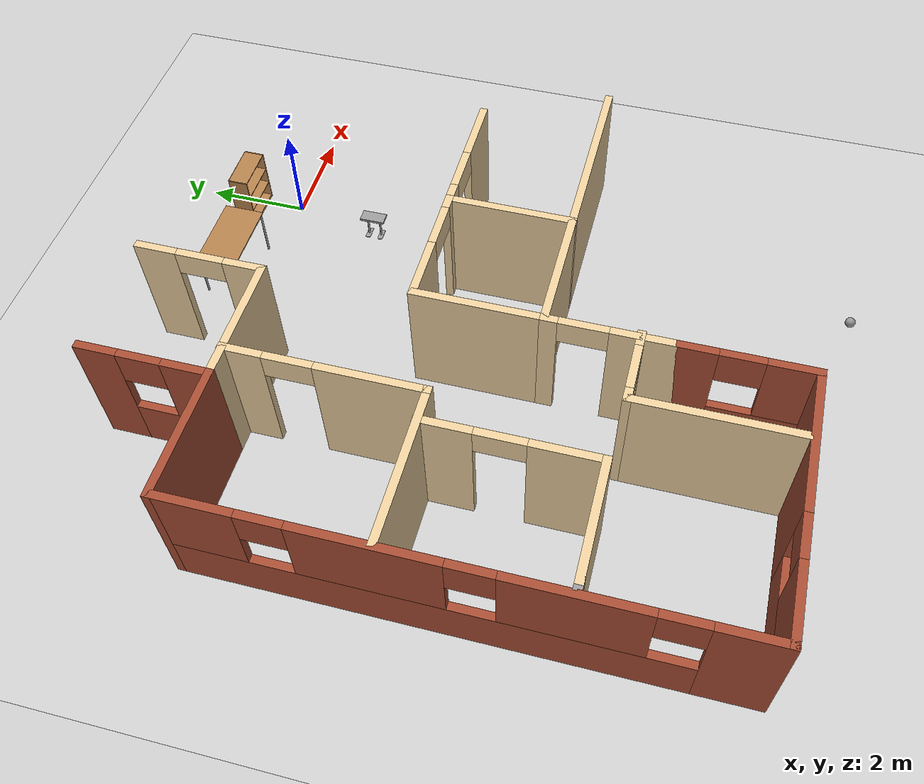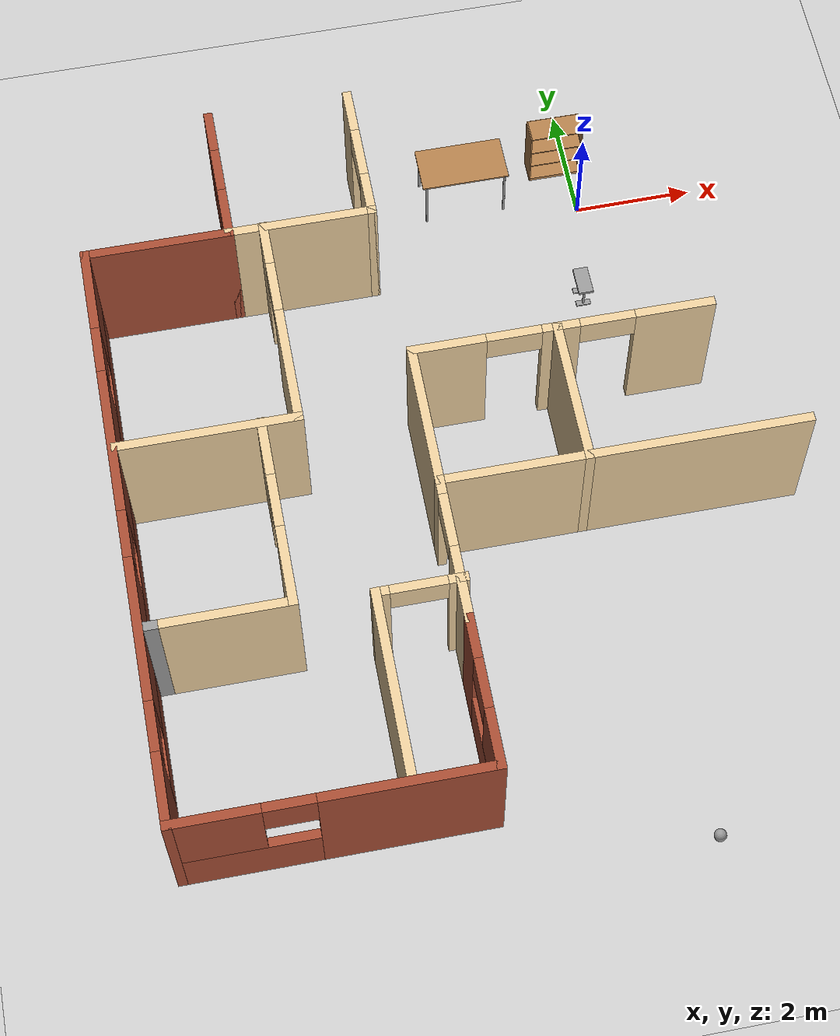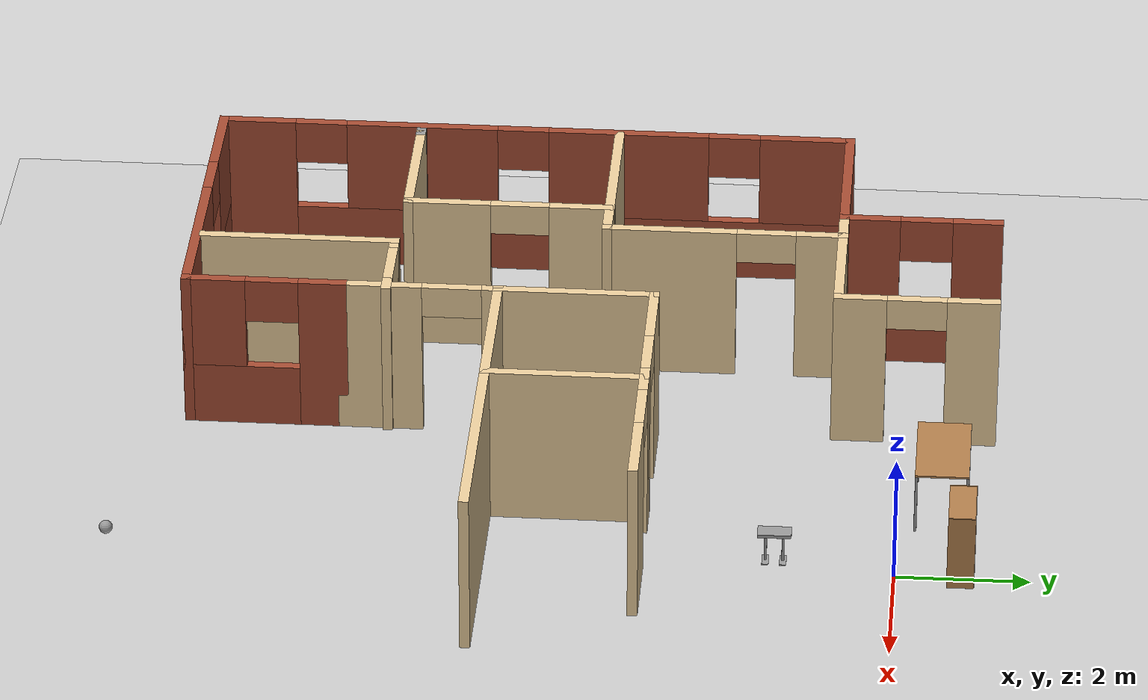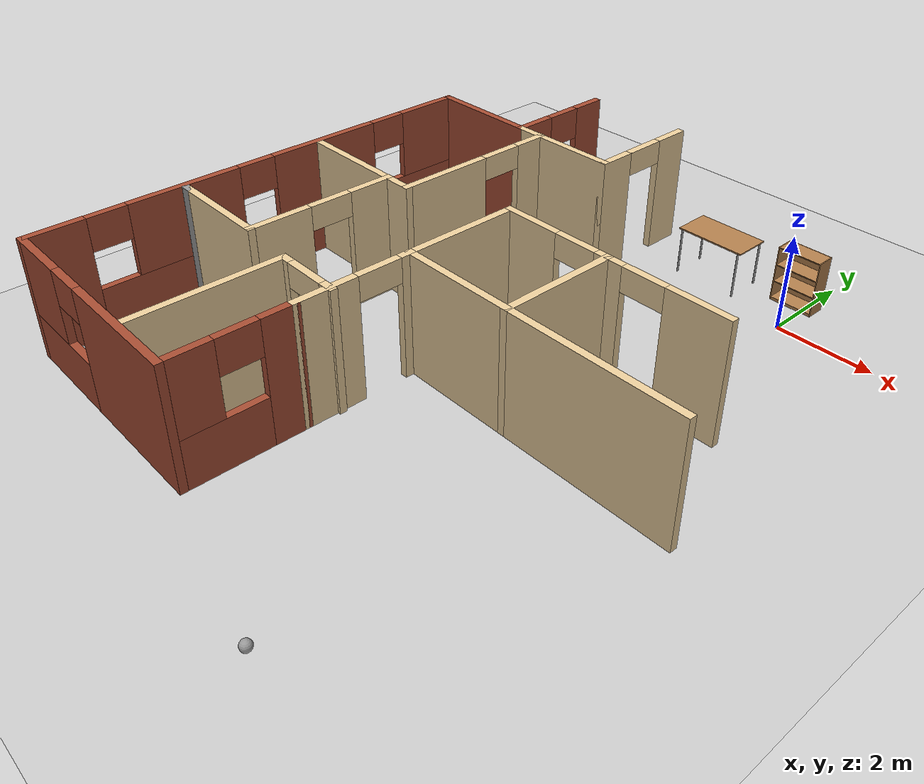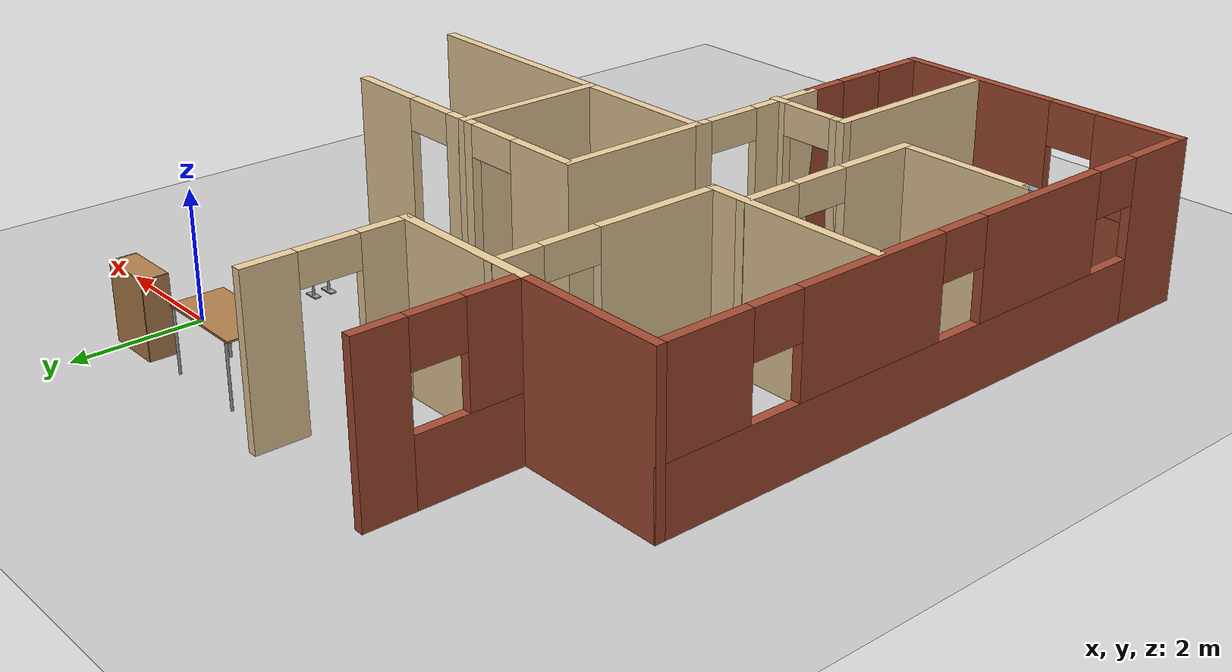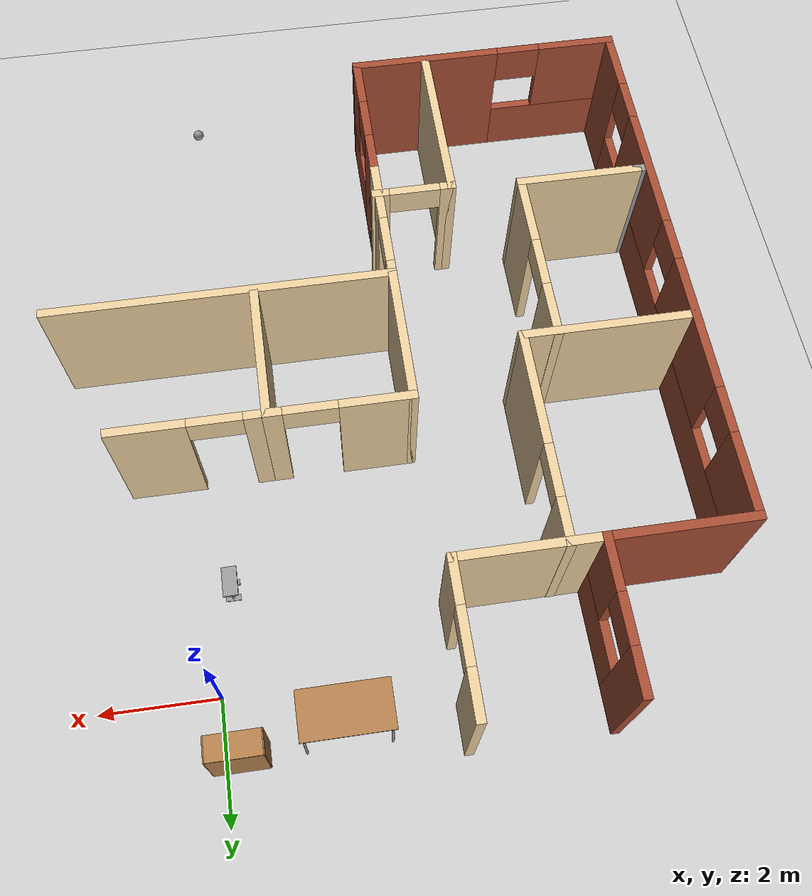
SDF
<sdf version="1.6">
 <world name="default">
  <model name="ground_plane">
   <static>1</static>
   <link name="link">
    <collision name="collision">
     <geometry><plane><normal>0 0 1</normal><size>100 100</size></plane></geometry>
     <surface>
      <contact><collide_bitmask>65535</collide_bitmask></contact>
      <friction><ode><mu>100</mu><mu2>50</mu2></ode></friction>
     </surface>
    </collision>
    <visual name="visual">
     <cast_shadows>0</cast_shadows>
     <geometry><plane><normal>0 0 1</normal><size>100 100</size></plane></geometry>
     <material>
      <script><uri>file://media/materials/scripts/gazebo.material</uri><name>Gazebo/Grey</name></script>
     </material>
    </visual>
   </link>
  </model>
  <model name="Building">
   <pose>1.29293 -4.72878 0 0 -0 0</pose>
   <link name="Wall_20">
    <pose>-7.42468 4.89874 0 0 0 -1.5708</pose>
    <visual name="Wall_20_Visual_0">
     <pose>-0.866423 0 1.25 0 -0 0</pose>
     <geometry><box><size>0.767154 0.15 2.5</size></box></geometry>
     <material>
      <script><uri>file://media/materials/scripts/gazebo.material</uri><name>Gazebo/Bricks</name></script>
      <ambient>1 1 1 1</ambient>
     </material>
     <meta><layer>0</layer></meta>
    </visual>
    <collision name="Wall_20_Collision_0">
     <geometry><box><size>0.767154 0.15 2.5</size></box></geometry>
     <pose>-0.866423 0 1.25 0 -0 0</pose>
    </collision>
    <visual name="Wall_20_Visual_1">
     <pose>0.383577 0 0.5 0 -0 0</pose>
     <geometry><box><size>1.73285 0.15 1</size></box></geometry>
     <material>
      <script><uri>file://media/materials/scripts/gazebo.material</uri><name>Gazebo/Bricks</name></script>
      <ambient>1 1 1 1</ambient>
     </material>
     <meta><layer>0</layer></meta>
    </visual>
    <collision name="Wall_20_Collision_1">
     <geometry><box><size>1.73285 0.15 1</size></box></geometry>
     <pose>0.383577 0 0.5 0 -0 0</pose>
    </collision>
    <visual name="Wall_20_Visual_2">
     <pose>0.783577 0 1.75 0 -0 0</pose>
     <geometry><box><size>0.932846 0.15 1.5</size></box></geometry>
     <material>
      <script><uri>file://media/materials/scripts/gazebo.material</uri><name>Gazebo/Bricks</name></script>
      <ambient>1 1 1 1</ambient>
     </material>
     <meta><layer>0</layer></meta>
    </visual>
    <collision name="Wall_20_Collision_2">
     <geometry><box><size>0.932846 0.15 1.5</size></box></geometry>
     <pose>0.783577 0 1.75 0 -0 0</pose>
    </collision>
    <visual name="Wall_20_Visual_3">
     <pose>-0.082846 0 2.15 0 -0 0</pose>
     <geometry><box><size>0.8 0.15 0.7</size></box></geometry>
     <material>
      <script><uri>file://media/materials/scripts/gazebo.material</uri><name>Gazebo/Bricks</name></script>
      <ambient>1 1 1 1</ambient>
     </material>
     <meta><layer>0</layer></meta>
    </visual>
    <collision name="Wall_20_Collision_3">
     <geometry><box><size>0.8 0.15 0.7</size></box></geometry>
     <pose>-0.082846 0 2.15 0 -0 0</pose>
    </collision>
   </link>
   <link name="Wall_22">
    <collision name="Wall_22_Collision">
     <geometry><box><size>2.5 0.15 2.5</size></box></geometry>
     <pose>0 0 1.25 0 -0 0</pose>
    </collision>
    <visual name="Wall_22_Visual">
     <pose>0 0 1.25 0 -0 0</pose>
     <geometry><box><size>2.5 0.15 2.5</size></box></geometry>
     <material>
      <script><uri>file://media/materials/scripts/gazebo.material</uri><name>Gazebo/Bricks</name></script>
      <ambient>1 1 1 1</ambient>
     </material>
     <meta><layer>0</layer></meta>
    </visual>
    <pose>-8.59968 3.72374 0 0 -0 3.14159</pose>
   </link>
   <link name="Wall_24">
    <pose>-4.925 -4.89874 0 0 0 -1.5708</pose>
    <visual name="Wall_24_Visual_0">
     <pose>-0.884029 0 1.25 0 -0 0</pose>
     <geometry><box><size>0.731941 0.15 2.5</size></box></geometry>
     <material>
      <script><uri>file://media/materials/scripts/gazebo.material</uri><name>Gazebo/Bricks</name></script>
      <ambient>1 1 1 1</ambient>
     </material>
     <meta><layer>0</layer></meta>
    </visual>
    <collision name="Wall_24_Collision_0">
     <geometry><box><size>0.731941 0.15 2.5</size></box></geometry>
     <pose>-0.884029 0 1.25 0 -0 0</pose>
    </collision>
    <visual name="Wall_24_Visual_1">
     <pose>0.365971 0 0.5 0 -0 0</pose>
     <geometry><box><size>1.76806 0.15 1</size></box></geometry>
     <material>
      <script><uri>file://media/materials/scripts/gazebo.material</uri><name>Gazebo/Bricks</name></script>
      <ambient>1 1 1 1</ambient>
     </material>
     <meta><layer>0</layer></meta>
    </visual>
    <collision name="Wall_24_Collision_1">
     <geometry><box><size>1.76806 0.15 1</size></box></geometry>
     <pose>0.365971 0 0.5 0 -0 0</pose>
    </collision>
    <visual name="Wall_24_Visual_2">
     <pose>0.765971 0 1.75 0 -0 0</pose>
     <geometry><box><size>0.968059 0.15 1.5</size></box></geometry>
     <material>
      <script><uri>file://media/materials/scripts/gazebo.material</uri><name>Gazebo/Bricks</name></script>
      <ambient>1 1 1 1</ambient>
     </material>
     <meta><layer>0</layer></meta>
    </visual>
    <collision name="Wall_24_Collision_2">
     <geometry><box><size>0.968059 0.15 1.5</size></box></geometry>
     <pose>0.765971 0 1.75 0 -0 0</pose>
    </collision>
    <visual name="Wall_24_Visual_3">
     <pose>-0.118059 0 2.15 0 -0 0</pose>
     <geometry><box><size>0.8 0.15 0.7</size></box></geometry>
     <material>
      <script><uri>file://media/materials/scripts/gazebo.material</uri><name>Gazebo/Bricks</name></script>
      <ambient>1 1 1 1</ambient>
     </material>
     <meta><layer>0</layer></meta>
    </visual>
    <collision name="Wall_24_Collision_3">
     <geometry><box><size>0.8 0.15 0.7</size></box></geometry>
     <pose>-0.118059 0 2.15 0 -0 0</pose>
    </collision>
   </link>
   <link name="Wall_26">
    <pose>-7.35 -6.07374 0 0 -0 3.14159</pose>
    <visual name="Wall_26_Visual_0">
     <pose>-1.12032 0 1.25 0 -0 0</pose>
     <geometry><box><size>2.75936 0.15 2.5</size></box></geometry>
     <material>
      <script><uri>file://media/materials/scripts/gazebo.material</uri><name>Gazebo/Bricks</name></script>
      <ambient>1 1 1 1</ambient>
     </material>
     <meta><layer>0</layer></meta>
    </visual>
    <collision name="Wall_26_Collision_0">
     <geometry><box><size>2.75936 0.15 2.5</size></box></geometry>
     <pose>-1.12032 0 1.25 0 -0 0</pose>
    </collision>
    <visual name="Wall_26_Visual_1">
     <pose>1.37968 0 0.5 0 -0 0</pose>
     <geometry><box><size>2.24064 0.15 1</size></box></geometry>
     <material>
      <script><uri>file://media/materials/scripts/gazebo.material</uri><name>Gazebo/Bricks</name></script>
      <ambient>1 1 1 1</ambient>
     </material>
     <meta><layer>0</layer></meta>
    </visual>
    <collision name="Wall_26_Collision_1">
     <geometry><box><size>2.24064 0.15 1</size></box></geometry>
     <pose>1.37968 0 0.5 0 -0 0</pose>
    </collision>
    <visual name="Wall_26_Visual_2">
     <pose>1.77968 0 1.75 0 -0 0</pose>
     <geometry><box><size>1.44064 0.15 1.5</size></box></geometry>
     <material>
      <script><uri>file://media/materials/scripts/gazebo.material</uri><name>Gazebo/Bricks</name></script>
      <ambient>1 1 1 1</ambient>
     </material>
     <meta><layer>0</layer></meta>
    </visual>
    <collision name="Wall_26_Collision_2">
     <geometry><box><size>1.44064 0.15 1.5</size></box></geometry>
     <pose>1.77968 0 1.75 0 -0 0</pose>
    </collision>
    <visual name="Wall_26_Visual_3">
     <pose>0.659358 0 2.15 0 -0 0</pose>
     <geometry><box><size>0.8 0.15 0.7</size></box></geometry>
     <material>
      <script><uri>file://media/materials/scripts/gazebo.material</uri><name>Gazebo/Bricks</name></script>
      <ambient>1 1 1 1</ambient>
     </material>
     <meta><layer>0</layer></meta>
    </visual>
    <collision name="Wall_26_Collision_3">
     <geometry><box><size>0.8 0.15 0.7</size></box></geometry>
     <pose>0.659358 0 2.15 0 -0 0</pose>
    </collision>
   </link>
   <link name="Wall_28">
    <pose>-9.77484 -1.175 0 0 -0 1.57076</pose>
    <visual name="Wall_28_Visual_0">
     <pose>-4.37001 0 1.25 0 -0 0</pose>
     <geometry><box><size>1.20746 0.15 2.5</size></box></geometry>
     <material>
      <script><uri>file://media/materials/scripts/gazebo.material</uri><name>Gazebo/Bricks</name></script>
      <ambient>1 1 1 1</ambient>
     </material>
     <meta><layer>0</layer></meta>
    </visual>
    <collision name="Wall_28_Collision_0">
     <geometry><box><size>1.20746 0.15 2.5</size></box></geometry>
     <pose>-4.37001 0 1.25 0 -0 0</pose>
    </collision>
    <visual name="Wall_28_Visual_1">
     <pose>0.603732 0 0.5 0 -0 0</pose>
     <geometry><box><size>8.74002 0.15 1</size></box></geometry>
     <material>
      <script><uri>file://media/materials/scripts/gazebo.material</uri><name>Gazebo/Bricks</name></script>
      <ambient>1 1 1 1</ambient>
     </material>
     <meta><layer>0</layer></meta>
    </visual>
    <collision name="Wall_28_Collision_1">
     <geometry><box><size>8.74002 0.15 1</size></box></geometry>
     <pose>0.603732 0 0.5 0 -0 0</pose>
    </collision>
    <visual name="Wall_28_Visual_2">
     <pose>-1.78357 0 1.75 0 -0 0</pose>
     <geometry><box><size>2.36542 0.15 1.5</size></box></geometry>
     <material>
      <script><uri>file://media/materials/scripts/gazebo.material</uri><name>Gazebo/Bricks</name></script>
      <ambient>1 1 1 1</ambient>
     </material>
     <meta><layer>0</layer></meta>
    </visual>
    <collision name="Wall_28_Collision_2">
     <geometry><box><size>2.36542 0.15 1.5</size></box></geometry>
     <pose>-1.78357 0 1.75 0 -0 0</pose>
    </collision>
    <visual name="Wall_28_Visual_3">
     <pose>1.44835 0 1.75 0 -0 0</pose>
     <geometry><box><size>2.49842 0.15 1.5</size></box></geometry>
     <material>
      <script><uri>file://media/materials/scripts/gazebo.material</uri><name>Gazebo/Bricks</name></script>
      <ambient>1 1 1 1</ambient>
     </material>
     <meta><layer>0</layer></meta>
    </visual>
    <collision name="Wall_28_Collision_3">
     <geometry><box><size>2.49842 0.15 1.5</size></box></geometry>
     <pose>1.44835 0 1.75 0 -0 0</pose>
    </collision>
    <visual name="Wall_28_Visual_4">
     <pose>4.23565 0 1.75 0 -0 0</pose>
     <geometry><box><size>1.47618 0.15 1.5</size></box></geometry>
     <material>
      <script><uri>file://media/materials/scripts/gazebo.material</uri><name>Gazebo/Bricks</name></script>
      <ambient>1 1 1 1</ambient>
     </material>
     <meta><layer>0</layer></meta>
    </visual>
    <collision name="Wall_28_Collision_4">
     <geometry><box><size>1.47618 0.15 1.5</size></box></geometry>
     <pose>4.23565 0 1.75 0 -0 0</pose>
    </collision>
    <visual name="Wall_28_Visual_5">
     <pose>-3.36628 0 2.15 0 -0 0</pose>
     <geometry><box><size>0.8 0.15 0.7</size></box></geometry>
     <material>
      <script><uri>file://media/materials/scripts/gazebo.material</uri><name>Gazebo/Bricks</name></script>
      <ambient>1 1 1 1</ambient>
     </material>
     <meta><layer>0</layer></meta>
    </visual>
    <collision name="Wall_28_Collision_5">
     <geometry><box><size>0.8 0.15 0.7</size></box></geometry>
     <pose>-3.36628 0 2.15 0 -0 0</pose>
    </collision>
    <visual name="Wall_28_Visual_6">
     <pose>-0.200857 0 2.15 0 -0 0</pose>
     <geometry><box><size>0.8 0.15 0.7</size></box></geometry>
     <material>
      <script><uri>file://media/materials/scripts/gazebo.material</uri><name>Gazebo/Bricks</name></script>
      <ambient>1 1 1 1</ambient>
     </material>
     <meta><layer>0</layer></meta>
    </visual>
    <collision name="Wall_28_Collision_6">
     <geometry><box><size>0.8 0.15 0.7</size></box></geometry>
     <pose>-0.200857 0 2.15 0 -0 0</pose>
    </collision>
    <visual name="Wall_28_Visual_7">
     <pose>3.09756 0 2.15 0 -0 0</pose>
     <geometry><box><size>0.8 0.15 0.7</size></box></geometry>
     <material>
      <script><uri>file://media/materials/scripts/gazebo.material</uri><name>Gazebo/Bricks</name></script>
      <ambient>1 1 1 1</ambient>
     </material>
     <meta><layer>0</layer></meta>
    </visual>
    <collision name="Wall_28_Collision_7">
     <geometry><box><size>0.8 0.15 0.7</size></box></geometry>
     <pose>3.09756 0 2.15 0 -0 0</pose>
    </collision>
   </link>
   <link name="Wall_30">
    <pose>-4.925 -2.54874 0 0 -0 1.5708</pose>
    <visual name="Wall_30_Visual_0">
     <pose>-0.60936 0 1.25 0 -0 0</pose>
     <geometry><box><size>1.28128 0.15 2.5</size></box></geometry>
     <material>
      <script><uri>file://media/materials/scripts/gazebo.material</uri><name>Gazebo/Grey</name></script>
      <ambient>0.921569 0.807843 0.615686 1</ambient>
     </material>
     <meta><layer>0</layer></meta>
    </visual>
    <collision name="Wall_30_Collision_0">
     <geometry><box><size>1.28128 0.15 2.5</size></box></geometry>
     <pose>-0.60936 0 1.25 0 -0 0</pose>
    </collision>
    <visual name="Wall_30_Visual_1">
     <pose>1.09064 0 1.25 0 -0 0</pose>
     <geometry><box><size>0.318721 0.15 2.5</size></box></geometry>
     <material>
      <script><uri>file://media/materials/scripts/gazebo.material</uri><name>Gazebo/Grey</name></script>
      <ambient>0.921569 0.807843 0.615686 1</ambient>
     </material>
     <meta><layer>0</layer></meta>
    </visual>
    <collision name="Wall_30_Collision_1">
     <geometry><box><size>0.318721 0.15 2.5</size></box></geometry>
     <pose>1.09064 0 1.25 0 -0 0</pose>
    </collision>
    <visual name="Wall_30_Visual_2">
     <pose>0.481279 0 2.25 0 -0 0</pose>
     <geometry><box><size>0.9 0.15 0.5</size></box></geometry>
     <material>
      <script><uri>file://media/materials/scripts/gazebo.material</uri><name>Gazebo/Grey</name></script>
      <ambient>0.921569 0.807843 0.615686 1</ambient>
     </material>
     <meta><layer>0</layer></meta>
    </visual>
    <collision name="Wall_30_Collision_2">
     <geometry><box><size>0.9 0.15 0.5</size></box></geometry>
     <pose>0.481279 0 2.25 0 -0 0</pose>
    </collision>
   </link>
   <link name="Wall_32">
    <collision name="Wall_32_Collision">
     <geometry><box><size>6 0.15 2.5</size></box></geometry>
     <pose>0 0 1.25 0 -0 0</pose>
    </collision>
    <visual name="Wall_32_Visual">
     <pose>0 0 1.25 0 -0 0</pose>
     <geometry><box><size>6 0.15 2.5</size></box></geometry>
     <material>
      <script><uri>file://media/materials/scripts/gazebo.material</uri><name>Gazebo/Grey</name></script>
      <ambient>0.921569 0.807843 0.615686 1</ambient>
     </material>
     <meta><layer>0</layer></meta>
    </visual>
    <pose>-2 -1.37374 0 0 -0 0</pose>
   </link>
   <link name="Wall_40">
    <collision name="Wall_40_Collision">
     <geometry><box><size>2.5 0.15 2.5</size></box></geometry>
     <pose>0 0 1.25 0 -0 0</pose>
    </collision>
    <visual name="Wall_40_Visual">
     <pose>0 0 1.25 0 -0 0</pose>
     <geometry><box><size>2.5 0.15 2.5</size></box></geometry>
     <material>
      <script><uri>file://media/materials/scripts/gazebo.material</uri><name>Gazebo/Grey</name></script>
      <ambient>0.921569 0.807843 0.615686 1</ambient>
     </material>
     <meta><layer>0</layer></meta>
    </visual>
    <pose>-4.925 -0.198743 0 0 -0 1.5708</pose>
   </link>
   <link name="Wall_44">
    <pose>-3.75 0.976257 0 0 -0 0</pose>
    <visual name="Wall_44_Visual_0">
     <pose>-0.612261 0 1.25 0 -0 0</pose>
     <geometry><box><size>1.27548 0.15 2.5</size></box></geometry>
     <material>
      <script><uri>file://media/materials/scripts/gazebo.material</uri><name>Gazebo/Grey</name></script>
      <ambient>0.921569 0.807843 0.615686 1</ambient>
     </material>
     <meta><layer>0</layer></meta>
    </visual>
    <collision name="Wall_44_Collision_0">
     <geometry><box><size>1.27548 0.15 2.5</size></box></geometry>
     <pose>-0.612261 0 1.25 0 -0 0</pose>
    </collision>
    <visual name="Wall_44_Visual_1">
     <pose>1.08774 0 1.25 0 -0 0</pose>
     <geometry><box><size>0.324522 0.15 2.5</size></box></geometry>
     <material>
      <script><uri>file://media/materials/scripts/gazebo.material</uri><name>Gazebo/Grey</name></script>
      <ambient>0.921569 0.807843 0.615686 1</ambient>
     </material>
     <meta><layer>0</layer></meta>
    </visual>
    <collision name="Wall_44_Collision_1">
     <geometry><box><size>0.324522 0.15 2.5</size></box></geometry>
     <pose>1.08774 0 1.25 0 -0 0</pose>
    </collision>
    <visual name="Wall_44_Visual_2">
     <pose>0.475478 0 2.25 0 -0 0</pose>
     <geometry><box><size>0.9 0.15 0.5</size></box></geometry>
     <material>
      <script><uri>file://media/materials/scripts/gazebo.material</uri><name>Gazebo/Grey</name></script>
      <ambient>0.921569 0.807843 0.615686 1</ambient>
     </material>
     <meta><layer>0</layer></meta>
    </visual>
    <collision name="Wall_44_Collision_2">
     <geometry><box><size>0.9 0.15 0.5</size></box></geometry>
     <pose>0.475478 0 2.25 0 -0 0</pose>
    </collision>
   </link>
   <link name="Wall_46">
    <collision name="Wall_46_Collision">
     <geometry><box><size>2.5 0.15 2.5</size></box></geometry>
     <pose>0 0 1.25 0 -0 0</pose>
    </collision>
    <visual name="Wall_46_Visual">
     <pose>0 0 1.25 0 -0 0</pose>
     <geometry><box><size>2.5 0.15 2.5</size></box></geometry>
     <material>
      <script><uri>file://media/materials/scripts/gazebo.material</uri><name>Gazebo/Grey</name></script>
      <ambient>0.921569 0.807843 0.615686 1</ambient>
     </material>
     <meta><layer>0</layer></meta>
    </visual>
    <pose>-2.575 -0.198743 0 0 0 -1.5708</pose>
   </link>
   <link name="Wall_52">
    <pose>-1.325 0.976257 0 0 -0 0</pose>
    <visual name="Wall_52_Visual_0">
     <pose>-1.10415 0 1.25 0 -0 0</pose>
     <geometry><box><size>0.441689 0.15 2.5</size></box></geometry>
     <material>
      <script><uri>file://media/materials/scripts/gazebo.material</uri><name>Gazebo/Grey</name></script>
      <ambient>0.921569 0.807843 0.615686 1</ambient>
     </material>
     <meta><layer>0</layer></meta>
    </visual>
    <collision name="Wall_52_Collision_0">
     <geometry><box><size>0.441689 0.15 2.5</size></box></geometry>
     <pose>-1.10415 0 1.25 0 -0 0</pose>
    </collision>
    <visual name="Wall_52_Visual_1">
     <pose>0.670845 0 1.25 0 -0 0</pose>
     <geometry><box><size>1.30831 0.15 2.5</size></box></geometry>
     <material>
      <script><uri>file://media/materials/scripts/gazebo.material</uri><name>Gazebo/Grey</name></script>
      <ambient>0.921569 0.807843 0.615686 1</ambient>
     </material>
     <meta><layer>0</layer></meta>
    </visual>
    <collision name="Wall_52_Collision_1">
     <geometry><box><size>1.30831 0.15 2.5</size></box></geometry>
     <pose>0.670845 0 1.25 0 -0 0</pose>
    </collision>
    <visual name="Wall_52_Visual_2">
     <pose>-0.433311 0 2.25 0 -0 0</pose>
     <geometry><box><size>0.9 0.15 0.5</size></box></geometry>
     <material>
      <script><uri>file://media/materials/scripts/gazebo.material</uri><name>Gazebo/Grey</name></script>
      <ambient>0.921569 0.807843 0.615686 1</ambient>
     </material>
     <meta><layer>0</layer></meta>
    </visual>
    <collision name="Wall_52_Collision_2">
     <geometry><box><size>0.9 0.15 0.5</size></box></geometry>
     <pose>-0.433311 0 2.25 0 -0 0</pose>
    </collision>
   </link>
   <link name="Wall_58">
    <collision name="Wall_58_Collision">
     <geometry><box><size>2.5 0.15 2.5</size></box></geometry>
     <pose>0 0 1.25 0 -0 0</pose>
    </collision>
    <visual name="Wall_58_Visual">
     <pose>0 0 1.25 0 -0 0</pose>
     <geometry><box><size>2.5 0.15 2.5</size></box></geometry>
     <material>
      <script><uri>file://media/materials/scripts/gazebo.material</uri><name>Gazebo/Grey</name></script>
      <ambient>0.921569 0.807843 0.615686 1</ambient>
     </material>
     <meta><layer>0</layer></meta>
    </visual>
    <pose>-6.24968 3.72374 0 0 -0 0</pose>
   </link>
   <link name="Wall_60">
    <pose>-5.07468 4.89874 0 0 -0 1.5708</pose>
    <visual name="Wall_60_Visual_0">
     <pose>-0.848477 0 1.25 0 -0 0</pose>
     <geometry><box><size>0.803045 0.15 2.5</size></box></geometry>
     <material>
      <script><uri>file://media/materials/scripts/gazebo.material</uri><name>Gazebo/Grey</name></script>
      <ambient>0.921569 0.807843 0.615686 1</ambient>
     </material>
     <meta><layer>0</layer></meta>
    </visual>
    <collision name="Wall_60_Collision_0">
     <geometry><box><size>0.803045 0.15 2.5</size></box></geometry>
     <pose>-0.848477 0 1.25 0 -0 0</pose>
    </collision>
    <visual name="Wall_60_Visual_1">
     <pose>0.851523 0 1.25 0 -0 0</pose>
     <geometry><box><size>0.796955 0.15 2.5</size></box></geometry>
     <material>
      <script><uri>file://media/materials/scripts/gazebo.material</uri><name>Gazebo/Grey</name></script>
      <ambient>0.921569 0.807843 0.615686 1</ambient>
     </material>
     <meta><layer>0</layer></meta>
    </visual>
    <collision name="Wall_60_Collision_1">
     <geometry><box><size>0.796955 0.15 2.5</size></box></geometry>
     <pose>0.851523 0 1.25 0 -0 0</pose>
    </collision>
    <visual name="Wall_60_Visual_2">
     <pose>0.003045 0 2.25 0 -0 0</pose>
     <geometry><box><size>0.9 0.15 0.5</size></box></geometry>
     <material>
      <script><uri>file://media/materials/scripts/gazebo.material</uri><name>Gazebo/Grey</name></script>
      <ambient>0.921569 0.807843 0.615686 1</ambient>
     </material>
     <meta><layer>0</layer></meta>
    </visual>
    <collision name="Wall_60_Collision_2">
     <geometry><box><size>0.9 0.15 0.5</size></box></geometry>
     <pose>0.003045 0 2.25 0 -0 0</pose>
    </collision>
   </link>
   <link name="Wall_62">
    <pose>-6.86555 1.93138 0 0 0 -1.5708</pose>
    <visual name="Wall_62_Visual_0">
     <pose>-1.4773 0 1.25 0 -0 0</pose>
     <geometry><box><size>0.795409 0.15 2.5</size></box></geometry>
     <material>
      <script><uri>file://media/materials/scripts/gazebo.material</uri><name>Gazebo/Grey</name></script>
      <ambient>0.921569 0.807843 0.615686 1</ambient>
     </material>
     <meta><layer>0</layer></meta>
    </visual>
    <collision name="Wall_62_Collision_0">
     <geometry><box><size>0.795409 0.15 2.5</size></box></geometry>
     <pose>-1.4773 0 1.25 0 -0 0</pose>
    </collision>
    <visual name="Wall_62_Visual_1">
     <pose>0.847705 0 1.25 0 -0 0</pose>
     <geometry><box><size>2.05459 0.15 2.5</size></box></geometry>
     <material>
      <script><uri>file://media/materials/scripts/gazebo.material</uri><name>Gazebo/Grey</name></script>
      <ambient>0.921569 0.807843 0.615686 1</ambient>
     </material>
     <meta><layer>0</layer></meta>
    </visual>
    <collision name="Wall_62_Collision_1">
     <geometry><box><size>2.05459 0.15 2.5</size></box></geometry>
     <pose>0.847705 0 1.25 0 -0 0</pose>
    </collision>
    <visual name="Wall_62_Visual_2">
     <pose>-0.629591 0 2.25 0 -0 0</pose>
     <geometry><box><size>0.9 0.15 0.5</size></box></geometry>
     <material>
      <script><uri>file://media/materials/scripts/gazebo.material</uri><name>Gazebo/Grey</name></script>
      <ambient>0.921569 0.807843 0.615686 1</ambient>
     </material>
     <meta><layer>0</layer></meta>
    </visual>
    <collision name="Wall_62_Collision_2">
     <geometry><box><size>0.9 0.15 0.5</size></box></geometry>
     <pose>-0.629591 0 2.25 0 -0 0</pose>
    </collision>
   </link>
   <link name="Wall_63">
    <collision name="Wall_63_Collision">
     <geometry><box><size>3 0.15 2.5</size></box></geometry>
     <pose>0 0 1.25 0 -0 0</pose>
    </collision>
    <visual name="Wall_63_Visual">
     <pose>0 0 1.25 0 -0 0</pose>
     <geometry><box><size>3 0.15 2.5</size></box></geometry>
     <material>
      <script><uri>file://media/materials/scripts/gazebo.material</uri><name>Gazebo/Grey</name></script>
      <ambient>0.921569 0.807843 0.615686 1</ambient>
     </material>
     <meta><layer>0</layer></meta>
    </visual>
    <pose>-8.29055 0.131379 0 0 -0 3.14159</pose>
   </link>
   <link name="Wall_65">
    <pose>-7.45075 -1.40965 0 0 0 -1.5708</pose>
    <visual name="Wall_65_Visual_0">
     <pose>-1.12089 0 1.25 0 -0 0</pose>
     <geometry><box><size>1.00821 0.15 2.5</size></box></geometry>
     <material>
      <script><uri>file://media/materials/scripts/gazebo.material</uri><name>Gazebo/Grey</name></script>
      <ambient>0.921569 0.807843 0.615686 1</ambient>
     </material>
     <meta><layer>0</layer></meta>
    </visual>
    <collision name="Wall_65_Collision_0">
     <geometry><box><size>1.00821 0.15 2.5</size></box></geometry>
     <pose>-1.12089 0 1.25 0 -0 0</pose>
    </collision>
    <visual name="Wall_65_Visual_1">
     <pose>0.954105 0 1.25 0 -0 0</pose>
     <geometry><box><size>1.34179 0.15 2.5</size></box></geometry>
     <material>
      <script><uri>file://media/materials/scripts/gazebo.material</uri><name>Gazebo/Grey</name></script>
      <ambient>0.921569 0.807843 0.615686 1</ambient>
     </material>
     <meta><layer>0</layer></meta>
    </visual>
    <collision name="Wall_65_Collision_1">
     <geometry><box><size>1.34179 0.15 2.5</size></box></geometry>
     <pose>0.954105 0 1.25 0 -0 0</pose>
    </collision>
    <visual name="Wall_65_Visual_2">
     <pose>-0.16679 0 2.25 0 -0 0</pose>
     <geometry><box><size>0.9 0.15 0.5</size></box></geometry>
     <material>
      <script><uri>file://media/materials/scripts/gazebo.material</uri><name>Gazebo/Grey</name></script>
      <ambient>0.921569 0.807843 0.615686 1</ambient>
     </material>
     <meta><layer>0</layer></meta>
    </visual>
    <collision name="Wall_65_Collision_2">
     <geometry><box><size>0.9 0.15 0.5</size></box></geometry>
     <pose>-0.16679 0 2.25 0 -0 0</pose>
    </collision>
   </link>
   <link name="Wall_68">
    <collision name="Wall_68_Collision">
     <geometry><box><size>2.25 0.15 2.5</size></box></geometry>
     <pose>0 0 1.25 0 -0 0</pose>
    </collision>
    <visual name="Wall_68_Visual">
     <pose>0 0 1.25 0 -0 0</pose>
     <geometry><box><size>2.25 0.15 2.5</size></box></geometry>
     <material>
      <script><uri>file://media/materials/scripts/gazebo.material</uri><name>Gazebo/Grey</name></script>
      <ambient>0.921569 0.807843 0.615686 1</ambient>
     </material>
     <meta><layer>0</layer></meta>
    </visual>
    <pose>-8.50075 -2.95965 0 0 -0 3.14159</pose>
   </link>
   <link name="Wall_69">
    <collision name="Wall_69_Collision">
     <geometry><box><size>0.25 0.15 2.5</size></box></geometry>
     <pose>0 0 1.25 0 -0 0</pose>
    </collision>
    <visual name="Wall_69_Visual">
     <pose>0 0 1.25 0 -0 0</pose>
     <geometry><box><size>0.25 0.15 2.5</size></box></geometry>
     <material>
      <script><uri>file://media/materials/scripts/gazebo.material</uri><name>Gazebo/Grey</name></script>
      <ambient>1 1 1 1</ambient>
     </material>
     <meta><layer>0</layer></meta>
    </visual>
    <pose>-9.60075 -2.95965 0 0 -0 3.14159</pose>
   </link>
   <link name="Wall_72">
    <collision name="Wall_72_Collision">
     <geometry><box><size>3.0532 0.15 2.5</size></box></geometry>
     <pose>0 0 1.25 0 -0 0</pose>
    </collision>
    <visual name="Wall_72_Visual">
     <pose>0 0 1.25 0 -0 0</pose>
     <geometry><box><size>3.0532 0.15 2.5</size></box></geometry>
     <material>
      <script><uri>file://media/materials/scripts/gazebo.material</uri><name>Gazebo/Grey</name></script>
      <ambient>0.921569 0.807843 0.615686 1</ambient>
     </material>
     <meta><layer>0</layer></meta>
    </visual>
    <pose>-6.22053 -4.50327 0 0 0 -1.5708</pose>
   </link>
   <link name="Wall_78">
    <pose>-5.54553 -3.05167 0 0 -0 0</pose>
    <visual name="Wall_78_Visual_0">
     <pose>-0.608303 0 1.25 0 -0 0</pose>
     <geometry><box><size>0.283395 0.15 2.5</size></box></geometry>
     <material>
      <script><uri>file://media/materials/scripts/gazebo.material</uri><name>Gazebo/Grey</name></script>
      <ambient>0.921569 0.807843 0.615686 1</ambient>
     </material>
     <meta><layer>0</layer></meta>
    </visual>
    <collision name="Wall_78_Collision_0">
     <geometry><box><size>0.283395 0.15 2.5</size></box></geometry>
     <pose>-0.608303 0 1.25 0 -0 0</pose>
    </collision>
    <visual name="Wall_78_Visual_1">
     <pose>0.591697 0 1.25 0 -0 0</pose>
     <geometry><box><size>0.316605 0.15 2.5</size></box></geometry>
     <material>
      <script><uri>file://media/materials/scripts/gazebo.material</uri><name>Gazebo/Grey</name></script>
      <ambient>0.921569 0.807843 0.615686 1</ambient>
     </material>
     <meta><layer>0</layer></meta>
    </visual>
    <collision name="Wall_78_Collision_1">
     <geometry><box><size>0.316605 0.15 2.5</size></box></geometry>
     <pose>0.591697 0 1.25 0 -0 0</pose>
    </collision>
    <visual name="Wall_78_Visual_2">
     <pose>-0.016605 0 2.25 0 -0 0</pose>
     <geometry><box><size>0.9 0.15 0.5</size></box></geometry>
     <material>
      <script><uri>file://media/materials/scripts/gazebo.material</uri><name>Gazebo/Grey</name></script>
      <ambient>0.921569 0.807843 0.615686 1</ambient>
     </material>
     <meta><layer>0</layer></meta>
    </visual>
    <collision name="Wall_78_Collision_2">
     <geometry><box><size>0.9 0.15 0.5</size></box></geometry>
     <pose>-0.016605 0 2.25 0 -0 0</pose>
    </collision>
   </link>
   <static>1</static>
  </model>
  <model name="HumanoidRobot_0">
   <link name="link_0">
    <pose>0 0 0.297 0 -0 0</pose>
    <inertial>
     <mass>1</mass>
     <inertia>
      <ixx>0.166667</ixx>
      <ixy>0</ixy>
      <ixz>0</ixz>
      <iyy>0.166667</iyy>
      <iyz>0</iyz>
      <izz>0.166667</izz>
     </inertia>
    </inertial>
    <visual name="visual">
     <geometry><box><size>0.25 0.5 0.05</size></box></geometry>
     <material>
      <lighting>1</lighting>
      <script><uri>file://media/materials/scripts/gazebo.material</uri><name>Gazebo/Grey</name></script>
      <shader type="pixel"><normal_map>__default__</normal_map></shader>
      <ambient>0.3 0.3 0.3 1</ambient>
      <diffuse>0.7 0.7 0.7 1</diffuse>
      <specular>0.01 0.01 0.01 1</specular>
      <emissive>0 0 0 1</emissive>
     </material>
    </visual>
    <collision name="collision">
     <geometry><box><size>0.25 0.5 0.05</size></box></geometry>
     <surface>
      <friction>
       <ode><mu>1</mu><mu2>1</mu2><fdir1>0 0 0</fdir1><slip1>0</slip1><slip2>0</slip2></ode>
       <torsional>
        <coefficient>1</coefficient>
        <patch_radius>0</patch_radius>
        <surface_radius>0</surface_radius>
        <use_patch_radius>1</use_patch_radius>
        <ode><slip>0</slip></ode>
       </torsional>
      </friction>
      <bounce><restitution_coefficient>0</restitution_coefficient><threshold>1e+06</threshold></bounce>
      <contact>
       <collide_without_contact>0</collide_without_contact>
       <collide_without_contact_bitmask>1</collide_without_contact_bitmask>
       <collide_bitmask>1</collide_bitmask>
       <ode>
        <soft_cfm>0</soft_cfm>
        <soft_erp>0.2</soft_erp>
        <kp>1e+13</kp>
        <kd>1</kd>
        <max_vel>0.01</max_vel>
        <min_depth>0</min_depth>
       </ode>
       <bullet>
        <split_impulse>1</split_impulse>
        <split_impulse_penetration_threshold>-0.01</split_impulse_penetration_threshold>
        <soft_cfm>0</soft_cfm>
        <soft_erp>0.2</soft_erp>
        <kp>1e+13</kp>
        <kd>1</kd>
       </bullet>
      </contact>
     </surface>
    </collision>
   </link>
   <link name="link_1">
    <pose>0 -0.13 -0.193 0 -0 0</pose>
    <inertial>
     <mass>1</mass>
     <inertia>
      <ixx>0.166667</ixx>
      <ixy>0</ixy>
      <ixz>0</ixz>
      <iyy>0.166667</iyy>
      <iyz>0</iyz>
      <izz>0.166667</izz>
     </inertia>
    </inertial>
    <visual name="visual">
     <geometry><box><size>0.25 0.1 0.02</size></box></geometry>
     <material>
      <lighting>1</lighting>
      <script><uri>file://media/materials/scripts/gazebo.material</uri><name>Gazebo/Grey</name></script>
      <shader type="pixel"><normal_map>__default__</normal_map></shader>
      <ambient>0.3 0.3 0.3 1</ambient>
      <diffuse>0.7 0.7 0.7 1</diffuse>
      <specular>0.01 0.01 0.01 1</specular>
      <emissive>0 0 0 1</emissive>
     </material>
    </visual>
    <collision name="collision">
     <geometry><box><size>0.25 0.1 0.02</size></box></geometry>
     <surface>
      <friction>
       <ode><mu>1</mu><mu2>1</mu2><fdir1>0 0 0</fdir1><slip1>0</slip1><slip2>0</slip2></ode>
       <torsional>
        <coefficient>1</coefficient>
        <patch_radius>0</patch_radius>
        <surface_radius>0</surface_radius>
        <use_patch_radius>1</use_patch_radius>
        <ode><slip>0</slip></ode>
       </torsional>
      </friction>
      <bounce><restitution_coefficient>0</restitution_coefficient><threshold>1e+06</threshold></bounce>
      <contact>
       <collide_without_contact>0</collide_without_contact>
       <collide_without_contact_bitmask>1</collide_without_contact_bitmask>
       <collide_bitmask>1</collide_bitmask>
       <ode>
        <soft_cfm>0</soft_cfm>
        <soft_erp>0.2</soft_erp>
        <kp>1e+13</kp>
        <kd>1</kd>
        <max_vel>0.01</max_vel>
        <min_depth>0</min_depth>
       </ode>
       <bullet>
        <split_impulse>1</split_impulse>
        <split_impulse_penetration_threshold>-0.01</split_impulse_penetration_threshold>
        <soft_cfm>0</soft_cfm>
        <soft_erp>0.2</soft_erp>
        <kp>1e+13</kp>
        <kd>1</kd>
       </bullet>
      </contact>
     </surface>
    </collision>
   </link>
   <link name="link_1_clone">
    <pose>0 0.13 -0.193 0 -0 0</pose>
    <inertial>
     <mass>1</mass>
     <inertia>
      <ixx>0.166667</ixx>
      <ixy>0</ixy>
      <ixz>0</ixz>
      <iyy>0.166667</iyy>
      <iyz>0</iyz>
      <izz>0.166667</izz>
     </inertia>
    </inertial>
    <visual name="visual">
     <geometry><box><size>0.25 0.1 0.02</size></box></geometry>
     <material>
      <lighting>1</lighting>
      <script><uri>file://media/materials/scripts/gazebo.material</uri><name>Gazebo/Grey</name></script>
      <shader type="pixel"><normal_map>__default__</normal_map></shader>
      <ambient>0.3 0.3 0.3 1</ambient>
      <diffuse>0.7 0.7 0.7 1</diffuse>
      <specular>0.01 0.01 0.01 1</specular>
      <emissive>0 0 0 1</emissive>
     </material>
    </visual>
    <collision name="collision">
     <geometry><box><size>0.25 0.1 0.02</size></box></geometry>
     <surface>
      <friction>
       <ode><mu>1</mu><mu2>1</mu2><fdir1>0 0 0</fdir1><slip1>0</slip1><slip2>0</slip2></ode>
       <torsional>
        <coefficient>1</coefficient>
        <patch_radius>0</patch_radius>
        <surface_radius>0</surface_radius>
        <use_patch_radius>1</use_patch_radius>
        <ode><slip>0</slip></ode>
       </torsional>
      </friction>
      <bounce><restitution_coefficient>0</restitution_coefficient><threshold>1e+06</threshold></bounce>
      <contact>
       <collide_without_contact>0</collide_without_contact>
       <collide_without_contact_bitmask>1</collide_without_contact_bitmask>
       <collide_bitmask>1</collide_bitmask>
       <ode>
        <soft_cfm>0</soft_cfm>
        <soft_erp>0.2</soft_erp>
        <kp>1e+13</kp>
        <kd>1</kd>
        <max_vel>0.01</max_vel>
        <min_depth>0</min_depth>
       </ode>
       <bullet>
        <split_impulse>1</split_impulse>
        <split_impulse_penetration_threshold>-0.01</split_impulse_penetration_threshold>
        <soft_cfm>0</soft_cfm>
        <soft_erp>0.2</soft_erp>
        <kp>1e+13</kp>
        <kd>1</kd>
       </bullet>
      </contact>
     </surface>
    </collision>
   </link>
   <link name="link_2">
    <pose>0 -0.13 0.0445 0 -0 0</pose>
    <inertial>
     <mass>1</mass>
     <inertia><ixx>0.145833</ixx><ixy>0</ixy><ixz>0</ixz><iyy>0.145833</iyy><iyz>0</iyz><izz>0.125</izz></inertia>
    </inertial>
    <visual name="visual">
     <geometry><cylinder><radius>0.02</radius><length>0.455</length></cylinder></geometry>
     <material>
      <lighting>1</lighting>
      <script><uri>file://media/materials/scripts/gazebo.material</uri><name>Gazebo/Grey</name></script>
      <shader type="pixel"><normal_map>__default__</normal_map></shader>
      <ambient>0.3 0.3 0.3 1</ambient>
      <diffuse>0.7 0.7 0.7 1</diffuse>
      <specular>0.01 0.01 0.01 1</specular>
      <emissive>0 0 0 1</emissive>
     </material>
    </visual>
    <collision name="collision">
     <geometry><cylinder><radius>0.02</radius><length>0.455</length></cylinder></geometry>
     <surface>
      <friction>
       <ode><mu>1</mu><mu2>1</mu2><fdir1>0 0 0</fdir1><slip1>0</slip1><slip2>0</slip2></ode>
       <torsional>
        <coefficient>1</coefficient>
        <patch_radius>0</patch_radius>
        <surface_radius>0</surface_radius>
        <use_patch_radius>1</use_patch_radius>
        <ode><slip>0</slip></ode>
       </torsional>
      </friction>
      <bounce><restitution_coefficient>0</restitution_coefficient><threshold>1e+06</threshold></bounce>
      <contact>
       <collide_without_contact>0</collide_without_contact>
       <collide_without_contact_bitmask>1</collide_without_contact_bitmask>
       <collide_bitmask>1</collide_bitmask>
       <ode>
        <soft_cfm>0</soft_cfm>
        <soft_erp>0.2</soft_erp>
        <kp>1e+13</kp>
        <kd>1</kd>
        <max_vel>0.01</max_vel>
        <min_depth>0</min_depth>
       </ode>
       <bullet>
        <split_impulse>1</split_impulse>
        <split_impulse_penetration_threshold>-0.01</split_impulse_penetration_threshold>
        <soft_cfm>0</soft_cfm>
        <soft_erp>0.2</soft_erp>
        <kp>1e+13</kp>
        <kd>1</kd>
       </bullet>
      </contact>
     </surface>
    </collision>
   </link>
   <link name="link_2_clone">
    <pose>0 0.13 0.0445 0 -0 0</pose>
    <inertial>
     <mass>1</mass>
     <inertia><ixx>0.145833</ixx><ixy>0</ixy><ixz>0</ixz><iyy>0.145833</iyy><iyz>0</iyz><izz>0.125</izz></inertia>
    </inertial>
    <visual name="visual">
     <geometry><cylinder><radius>0.02</radius><length>0.455</length></cylinder></geometry>
     <material>
      <lighting>1</lighting>
      <script><uri>file://media/materials/scripts/gazebo.material</uri><name>Gazebo/Grey</name></script>
      <shader type="pixel"><normal_map>__default__</normal_map></shader>
      <ambient>0.3 0.3 0.3 1</ambient>
      <diffuse>0.7 0.7 0.7 1</diffuse>
      <specular>0.01 0.01 0.01 1</specular>
      <emissive>0 0 0 1</emissive>
     </material>
    </visual>
    <collision name="collision">
     <geometry><cylinder><radius>0.02</radius><length>0.455</length></cylinder></geometry>
     <surface>
      <friction>
       <ode><mu>1</mu><mu2>1</mu2><fdir1>0 0 0</fdir1><slip1>0</slip1><slip2>0</slip2></ode>
       <torsional>
        <coefficient>1</coefficient>
        <patch_radius>0</patch_radius>
        <surface_radius>0</surface_radius>
        <use_patch_radius>1</use_patch_radius>
        <ode><slip>0</slip></ode>
       </torsional>
      </friction>
      <bounce><restitution_coefficient>0</restitution_coefficient><threshold>1e+06</threshold></bounce>
      <contact>
       <collide_without_contact>0</collide_without_contact>
       <collide_without_contact_bitmask>1</collide_without_contact_bitmask>
       <collide_bitmask>1</collide_bitmask>
       <ode>
        <soft_cfm>0</soft_cfm>
        <soft_erp>0.2</soft_erp>
        <kp>1e+13</kp>
        <kd>1</kd>
        <max_vel>0.01</max_vel>
        <min_depth>0</min_depth>
       </ode>
       <bullet>
        <split_impulse>1</split_impulse>
        <split_impulse_penetration_threshold>-0.01</split_impulse_penetration_threshold>
        <soft_cfm>0</soft_cfm>
        <soft_erp>0.2</soft_erp>
        <kp>1e+13</kp>
        <kd>1</kd>
       </bullet>
      </contact>
     </surface>
    </collision>
   </link>
   <joint name="link_0_JOINT_0" type="fixed">
    <parent>link_0</parent>
    <child>link_2</child>
    <physics>
     <ode><limit><cfm>0</cfm><erp>0.2</erp></limit><suspension><cfm>0</cfm><erp>0.2</erp></suspension></ode>
    </physics>
   </joint>
   <joint name="link_0_JOINT_1" type="fixed">
    <parent>link_0</parent>
    <child>link_2_clone</child>
    <physics>
     <ode><limit><cfm>0</cfm><erp>0.2</erp></limit><suspension><cfm>0</cfm><erp>0.2</erp></suspension></ode>
    </physics>
   </joint>
   <joint name="link_2_JOINT_2" type="fixed">
    <parent>link_2</parent>
    <child>link_1</child>
    <physics>
     <ode><limit><cfm>0</cfm><erp>0.2</erp></limit><suspension><cfm>0</cfm><erp>0.2</erp></suspension></ode>
    </physics>
   </joint>
   <joint name="link_2_clone_JOINT_3" type="fixed">
    <parent>link_2_clone</parent>
    <child>link_1_clone</child>
    <physics>
     <ode><limit><cfm>0</cfm><erp>0.2</erp></limit><suspension><cfm>0</cfm><erp>0.2</erp></suspension></ode>
    </physics>
   </joint>
   <static>0</static>
   <pose>-0.312434 -1.76608 0.203 0 -0 0.002867</pose>
  </model>
  <model name="bookshelf">
   <static>1</static>
   <link name="link">
    <inertial><mass>1</mass></inertial>
    <collision name="back">
     <pose>0 0.005 0.6 0 -0 0</pose>
     <geometry><box><size>0.9 0.01 1.2</size></box></geometry>
    </collision>
    <visual name="visual1">
     <pose>0 0.005 0.6 0 -0 0</pose>
     <geometry><box><size>0.9 0.01 1.2</size></box></geometry>
     <material>
      <script><uri>file://media/materials/scripts/gazebo.material</uri><name>Gazebo/Wood</name></script>
     </material>
    </visual>
    <collision name="left_side">
     <pose>0.45 -0.195 0.6 0 -0 0</pose>
     <geometry><box><size>0.02 0.4 1.2</size></box></geometry>
    </collision>
    <visual name="visual2">
     <pose>0.45 -0.195 0.6 0 -0 0</pose>
     <geometry><box><size>0.02 0.4 1.2</size></box></geometry>
     <material>
      <script><uri>file://media/materials/scripts/gazebo.material</uri><name>Gazebo/Wood</name></script>
     </material>
    </visual>
    <collision name="right_side">
     <pose>-0.45 -0.195 0.6 0 -0 0</pose>
     <geometry><box><size>0.02 0.4 1.2</size></box></geometry>
    </collision>
    <visual name="visual3">
     <pose>-0.45 -0.195 0.6 0 -0 0</pose>
     <geometry><box><size>0.02 0.4 1.2</size></box></geometry>
     <material>
      <script><uri>file://media/materials/scripts/gazebo.material</uri><name>Gazebo/Wood</name></script>
     </material>
    </visual>
    <collision name="bottom">
     <pose>0 -0.195 0.03 0 -0 0</pose>
     <geometry><box><size>0.88 0.4 0.06</size></box></geometry>
    </collision>
    <visual name="visual4">
     <pose>0 -0.195 0.03 0 -0 0</pose>
     <geometry><box><size>0.88 0.4 0.06</size></box></geometry>
     <material>
      <script><uri>file://media/materials/scripts/gazebo.material</uri><name>Gazebo/Wood</name></script>
     </material>
    </visual>
    <collision name="top">
     <pose>0 -0.195 1.19 0 -0 0</pose>
     <geometry><box><size>0.88 0.4 0.02</size></box></geometry>
    </collision>
    <visual name="visual5">
     <pose>0 -0.195 1.19 0 -0 0</pose>
     <geometry><box><size>0.88 0.4 0.02</size></box></geometry>
     <material>
      <script><uri>file://media/materials/scripts/gazebo.material</uri><name>Gazebo/Wood</name></script>
     </material>
    </visual>
    <collision name="low_shelf">
     <pose>0 -0.195 0.43 0 -0 0</pose>
     <geometry><box><size>0.88 0.4 0.02</size></box></geometry>
    </collision>
    <visual name="visual6">
     <pose>0 -0.195 0.43 0 -0 0</pose>
     <geometry><box><size>0.88 0.4 0.02</size></box></geometry>
     <material>
      <script><uri>file://media/materials/scripts/gazebo.material</uri><name>Gazebo/Wood</name></script>
     </material>
    </visual>
    <collision name="high_shelf">
     <pose>0 -0.195 0.8 0 -0 0</pose>
     <geometry><box><size>0.88 0.4 0.02</size></box></geometry>
    </collision>
    <visual name="visual7">
     <pose>0 -0.195 0.8 0 -0 0</pose>
     <geometry><box><size>0.88 0.4 0.02</size></box></geometry>
     <material>
      <script><uri>file://media/materials/scripts/gazebo.material</uri><name>Gazebo/Wood</name></script>
     </material>
    </visual>
   </link>
   <pose>-0.239282 1.17183 0 0 -0 0</pose>
  </model>
  <model name="table">
   <static>1</static>
   <link name="link">
    <collision name="surface">
     <pose>0 0 1 0 -0 0</pose>
     <geometry><box><size>1.5 0.8 0.03</size></box></geometry>
     <surface><friction><ode><mu>0.6</mu><mu2>0.6</mu2></ode></friction></surface>
    </collision>
    <visual name="visual1">
     <pose>0 0 1 0 -0 0</pose>
     <geometry><box><size>1.5 0.8 0.03</size></box></geometry>
     <material>
      <script><uri>file://media/materials/scripts/gazebo.material</uri><name>Gazebo/Wood</name></script>
     </material>
    </visual>
    <collision name="front_left_leg">
     <pose>0.68 0.38 0.5 0 -0 0</pose>
     <geometry><cylinder><radius>0.02</radius><length>1</length></cylinder></geometry>
    </collision>
    <visual name="front_left_leg">
     <pose>0.68 0.38 0.5 0 -0 0</pose>
     <geometry><cylinder><radius>0.02</radius><length>1</length></cylinder></geometry>
     <material>
      <script><uri>file://media/materials/scripts/gazebo.material</uri><name>Gazebo/Grey</name></script>
     </material>
    </visual>
    <collision name="front_right_leg">
     <pose>0.68 -0.38 0.5 0 -0 0</pose>
     <geometry><cylinder><radius>0.02</radius><length>1</length></cylinder></geometry>
    </collision>
    <visual name="front_right_leg">
     <pose>0.68 -0.38 0.5 0 -0 0</pose>
     <geometry><cylinder><radius>0.02</radius><length>1</length></cylinder></geometry>
     <material>
      <script><uri>file://media/materials/scripts/gazebo.material</uri><name>Gazebo/Grey</name></script>
     </material>
    </visual>
    <collision name="back_right_leg">
     <pose>-0.68 -0.38 0.5 0 -0 0</pose>
     <geometry><cylinder><radius>0.02</radius><length>1</length></cylinder></geometry>
    </collision>
    <visual name="back_right_leg">
     <pose>-0.68 -0.38 0.5 0 -0 0</pose>
     <geometry><cylinder><radius>0.02</radius><length>1</length></cylinder></geometry>
     <material>
      <script><uri>file://media/materials/scripts/gazebo.material</uri><name>Gazebo/Grey</name></script>
     </material>
    </visual>
    <collision name="back_left_leg">
     <pose>-0.68 0.38 0.5 0 -0 0</pose>
     <geometry><cylinder><radius>0.02</radius><length>1</length></cylinder></geometry>
    </collision>
    <visual name="back_left_leg">
     <pose>-0.68 0.38 0.5 0 -0 0</pose>
     <geometry><cylinder><radius>0.02</radius><length>1</length></cylinder></geometry>
     <material>
      <script><uri>file://media/materials/scripts/gazebo.material</uri><name>Gazebo/Grey</name></script>
     </material>
    </visual>
   </link>
   <pose>-1.95056 0.655034 0 0 -0 0</pose>
  </model>
  <model name="my_ball">
   <link name="link_0">
    <inertial>
     <mass>1</mass>
     <inertia><ixx>0.1</ixx><ixy>0</ixy><ixz>0</ixz><iyy>0.1</iyy><iyz>0</iyz><izz>0.1</izz></inertia>
    </inertial>
    <visual name="visual">
     <geometry><sphere><radius>0.1</radius></sphere></geometry>
     <material>
      <lighting>1</lighting>
      <script><uri>file://media/materials/scripts/gazebo.material</uri><name>Gazebo/Grey</name></script>
      <ambient>1 1 1 1</ambient>
      <diffuse>1 1 1 1</diffuse>
      <specular>1 1 1 1</specular>
      <emissive>1 1 1 1</emissive>
      <shader type="vertex"><normal_map>__default__</normal_map></shader>
     </material>
    </visual>
    <collision name="collision">
     <geometry><sphere><radius>0.1</radius></sphere></geometry>
     <surface>
      <friction>
       <ode><mu>1</mu><mu2>1</mu2><fdir1>0 0 0</fdir1><slip1>0</slip1><slip2>0</slip2></ode>
       <torsional>
        <coefficient>1</coefficient>
        <patch_radius>0</patch_radius>
        <surface_radius>0</surface_radius>
        <use_patch_radius>1</use_patch_radius>
        <ode><slip>0</slip></ode>
       </torsional>
      </friction>
      <bounce><restitution_coefficient>0</restitution_coefficient><threshold>1e+06</threshold></bounce>
      <contact>
       <collide_without_contact>0</collide_without_contact>
       <collide_without_contact_bitmask>1</collide_without_contact_bitmask>
       <collide_bitmask>1</collide_bitmask>
       <ode>
        <soft_cfm>0</soft_cfm>
        <soft_erp>0.2</soft_erp>
        <kp>1e+13</kp>
        <kd>1</kd>
        <max_vel>0.01</max_vel>
        <min_depth>0</min_depth>
       </ode>
       <bullet>
        <split_impulse>1</split_impulse>
        <split_impulse_penetration_threshold>-0.01</split_impulse_penetration_threshold>
        <soft_cfm>0</soft_cfm>
        <soft_erp>0.2</soft_erp>
        <kp>1e+13</kp>
        <kd>1</kd>
       </bullet>
      </contact>
     </surface>
    </collision>
   </link>
   <static>0</static>
   <pose>-0.353845 -11.6645 0.1 0 -0 0</pose>
  </model>
 </world>
</sdf>
